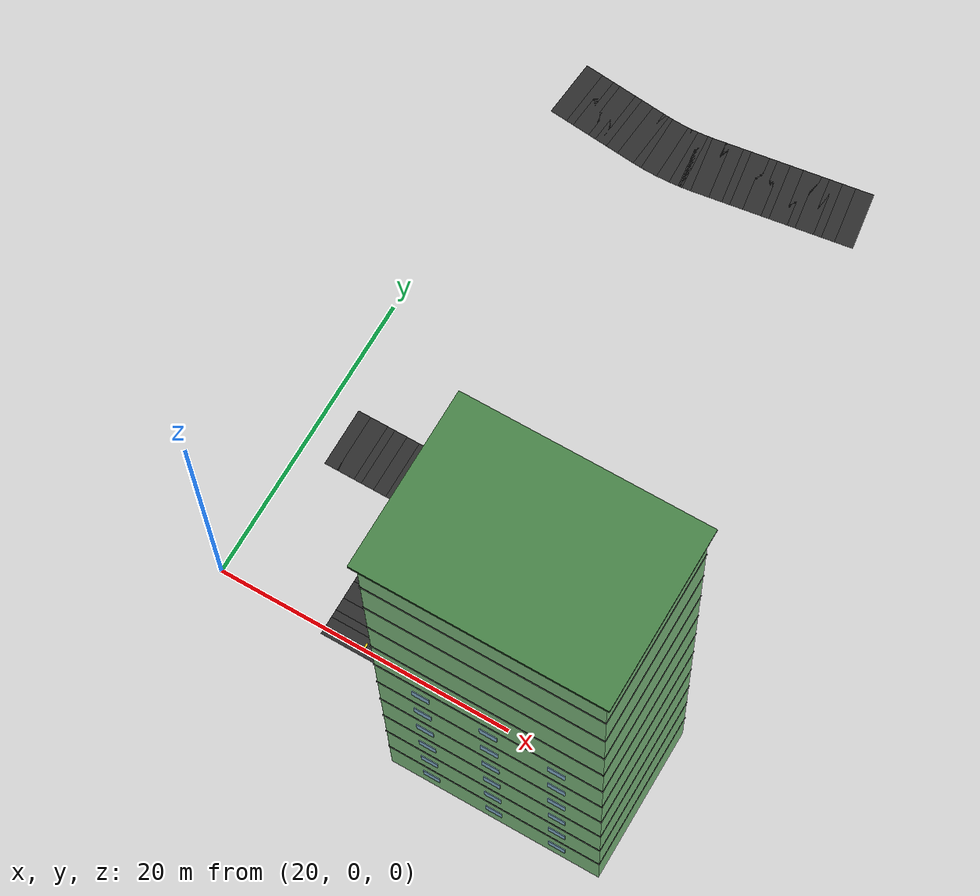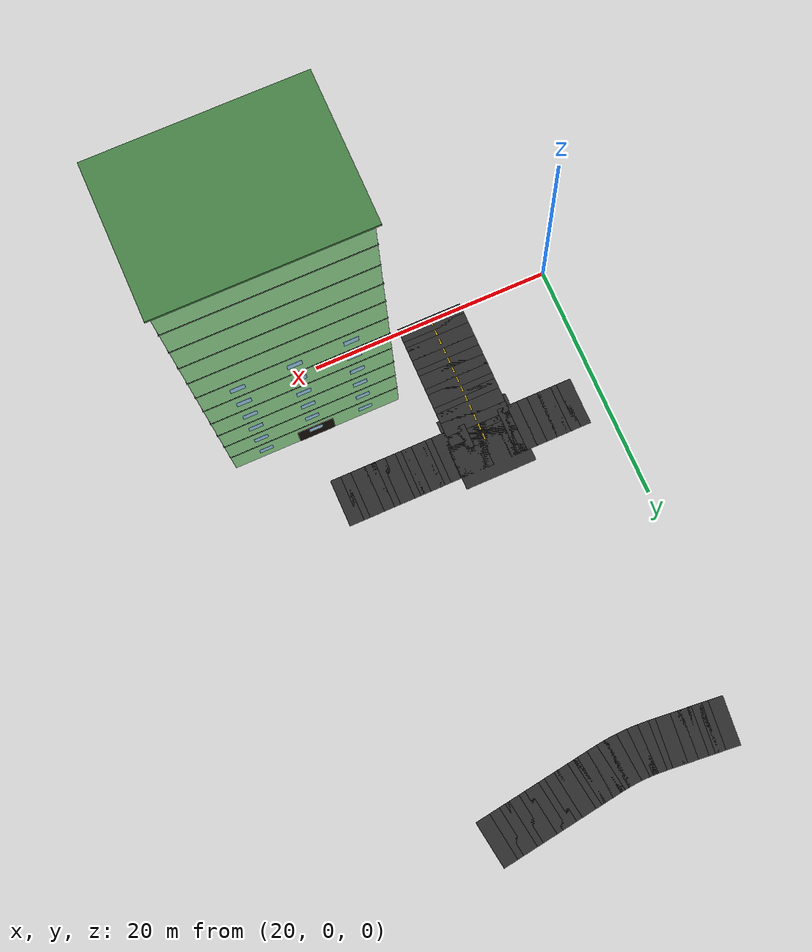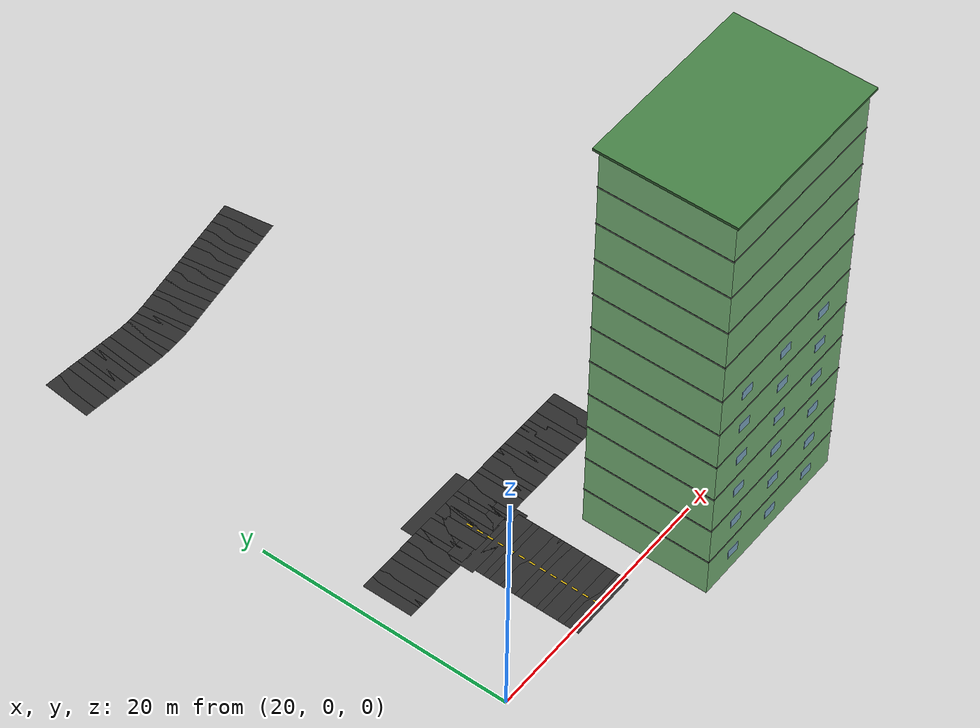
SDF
<sdf version="1.7">
 <world name="campus_delivery">
  <model name="campus_roads">
   <static>true</static>
   <link name="campus_main_trunk_0049">
    <pose>30.000 0.205 0.002 0 0 1.570796</pose>
    <visual name="visual">
     <geometry><box><size>1.214 5.500 0.004</size></box></geometry>
     <material><ambient>0.160 0.160 0.160 1.000</ambient><diffuse>0.160 0.160 0.160 1.000</diffuse></material>
    </visual>
    <visual name="center_line">
     <pose>0 0 0.008 0 0 0</pose>
     <geometry><box><size>0.475 0.120 0.012</size></box></geometry>
     <material><ambient>0.950 0.780 0.080 1.000</ambient><diffuse>0.950 0.780 0.080 1.000</diffuse></material>
    </visual>
   </link>
   <link name="campus_main_trunk_0050">
    <pose>30.000 1.068 0.002 0 0 1.570796</pose>
    <visual name="visual">
     <geometry><box><size>1.214 5.500 0.004</size></box></geometry>
     <material><ambient>0.160 0.160 0.160 1.000</ambient><diffuse>0.160 0.160 0.160 1.000</diffuse></material>
    </visual>
    <visual name="center_line">
     <pose>0 0 0.008 0 0 0</pose>
     <geometry><box><size>0.475 0.120 0.012</size></box></geometry>
     <material><ambient>0.950 0.780 0.080 1.000</ambient><diffuse>0.950 0.780 0.080 1.000</diffuse></material>
    </visual>
   </link>
   <link name="campus_main_trunk_0051">
    <pose>30.000 1.932 0.002 0 0 1.570796</pose>
    <visual name="visual">
     <geometry><box><size>1.214 5.500 0.004</size></box></geometry>
     <material><ambient>0.160 0.160 0.160 1.000</ambient><diffuse>0.160 0.160 0.160 1.000</diffuse></material>
    </visual>
    <visual name="center_line">
     <pose>0 0 0.008 0 0 0</pose>
     <geometry><box><size>0.475 0.120 0.012</size></box></geometry>
     <material><ambient>0.950 0.780 0.080 1.000</ambient><diffuse>0.950 0.780 0.080 1.000</diffuse></material>
    </visual>
   </link>
   <link name="campus_main_trunk_0052">
    <pose>30.000 2.795 0.002 0 0 1.570796</pose>
    <visual name="visual">
     <geometry><box><size>1.214 5.500 0.004</size></box></geometry>
     <material><ambient>0.160 0.160 0.160 1.000</ambient><diffuse>0.160 0.160 0.160 1.000</diffuse></material>
    </visual>
    <visual name="center_line">
     <pose>0 0 0.008 0 0 0</pose>
     <geometry><box><size>0.475 0.120 0.012</size></box></geometry>
     <material><ambient>0.950 0.780 0.080 1.000</ambient><diffuse>0.950 0.780 0.080 1.000</diffuse></material>
    </visual>
   </link>
   <link name="campus_main_trunk_0053">
    <pose>30.000 3.659 0.002 0 0 1.570796</pose>
    <visual name="visual">
     <geometry><box><size>1.214 5.500 0.004</size></box></geometry>
     <material><ambient>0.160 0.160 0.160 1.000</ambient><diffuse>0.160 0.160 0.160 1.000</diffuse></material>
    </visual>
    <visual name="center_line">
     <pose>0 0 0.008 0 0 0</pose>
     <geometry><box><size>0.475 0.120 0.012</size></box></geometry>
     <material><ambient>0.950 0.780 0.080 1.000</ambient><diffuse>0.950 0.780 0.080 1.000</diffuse></material>
    </visual>
   </link>
   <link name="campus_main_trunk_0054">
    <pose>30.000 4.523 0.002 0 0 1.570796</pose>
    <visual name="visual">
     <geometry><box><size>1.214 5.500 0.004</size></box></geometry>
     <material><ambient>0.160 0.160 0.160 1.000</ambient><diffuse>0.160 0.160 0.160 1.000</diffuse></material>
    </visual>
    <visual name="center_line">
     <pose>0 0 0.008 0 0 0</pose>
     <geometry><box><size>0.475 0.120 0.012</size></box></geometry>
     <material><ambient>0.950 0.780 0.080 1.000</ambient><diffuse>0.950 0.780 0.080 1.000</diffuse></material>
    </visual>
   </link>
   <link name="campus_main_trunk_0055">
    <pose>30.000 5.386 0.002 0 0 1.570796</pose>
    <visual name="visual">
     <geometry><box><size>1.214 5.500 0.004</size></box></geometry>
     <material><ambient>0.160 0.160 0.160 1.000</ambient><diffuse>0.160 0.160 0.160 1.000</diffuse></material>
    </visual>
    <visual name="center_line">
     <pose>0 0 0.008 0 0 0</pose>
     <geometry><box><size>0.475 0.120 0.012</size></box></geometry>
     <material><ambient>0.950 0.780 0.080 1.000</ambient><diffuse>0.950 0.780 0.080 1.000</diffuse></material>
    </visual>
   </link>
   <link name="campus_main_trunk_0056">
    <pose>30.000 6.250 0.002 0 0 1.570796</pose>
    <visual name="visual">
     <geometry><box><size>1.214 5.500 0.004</size></box></geometry>
     <material><ambient>0.160 0.160 0.160 1.000</ambient><diffuse>0.160 0.160 0.160 1.000</diffuse></material>
    </visual>
    <visual name="center_line">
     <pose>0 0 0.008 0 0 0</pose>
     <geometry><box><size>0.475 0.120 0.012</size></box></geometry>
     <material><ambient>0.950 0.780 0.080 1.000</ambient><diffuse>0.950 0.780 0.080 1.000</diffuse></material>
    </visual>
   </link>
   <link name="campus_main_trunk_0057">
    <pose>30.000 7.114 0.002 0 0 1.570796</pose>
    <visual name="visual">
     <geometry><box><size>1.214 5.500 0.004</size></box></geometry>
     <material><ambient>0.160 0.160 0.160 1.000</ambient><diffuse>0.160 0.160 0.160 1.000</diffuse></material>
    </visual>
    <visual name="center_line">
     <pose>0 0 0.008 0 0 0</pose>
     <geometry><box><size>0.475 0.120 0.012</size></box></geometry>
     <material><ambient>0.950 0.780 0.080 1.000</ambient><diffuse>0.950 0.780 0.080 1.000</diffuse></material>
    </visual>
   </link>
   <link name="campus_main_trunk_0058">
    <pose>30.000 7.977 0.002 0 0 1.570796</pose>
    <visual name="visual">
     <geometry><box><size>1.214 5.500 0.004</size></box></geometry>
     <material><ambient>0.160 0.160 0.160 1.000</ambient><diffuse>0.160 0.160 0.160 1.000</diffuse></material>
    </visual>
    <visual name="center_line">
     <pose>0 0 0.008 0 0 0</pose>
     <geometry><box><size>0.475 0.120 0.012</size></box></geometry>
     <material><ambient>0.950 0.780 0.080 1.000</ambient><diffuse>0.950 0.780 0.080 1.000</diffuse></material>
    </visual>
   </link>
   <link name="campus_main_trunk_0059">
    <pose>30.000 8.841 0.002 0 0 1.570796</pose>
    <visual name="visual">
     <geometry><box><size>1.214 5.500 0.004</size></box></geometry>
     <material><ambient>0.160 0.160 0.160 1.000</ambient><diffuse>0.160 0.160 0.160 1.000</diffuse></material>
    </visual>
    <visual name="center_line">
     <pose>0 0 0.008 0 0 0</pose>
     <geometry><box><size>0.475 0.120 0.012</size></box></geometry>
     <material><ambient>0.950 0.780 0.080 1.000</ambient><diffuse>0.950 0.780 0.080 1.000</diffuse></material>
    </visual>
   </link>
   <link name="campus_main_trunk_0060">
    <pose>30.000 9.705 0.002 0 0 1.570796</pose>
    <visual name="visual">
     <geometry><box><size>1.214 5.500 0.004</size></box></geometry>
     <material><ambient>0.160 0.160 0.160 1.000</ambient><diffuse>0.160 0.160 0.160 1.000</diffuse></material>
    </visual>
    <visual name="center_line">
     <pose>0 0 0.008 0 0 0</pose>
     <geometry><box><size>0.475 0.120 0.012</size></box></geometry>
     <material><ambient>0.950 0.780 0.080 1.000</ambient><diffuse>0.950 0.780 0.080 1.000</diffuse></material>
    </visual>
   </link>
   <link name="campus_main_trunk_0061">
    <pose>30.000 10.568 0.002 0 0 1.570796</pose>
    <visual name="visual">
     <geometry><box><size>1.214 5.500 0.004</size></box></geometry>
     <material><ambient>0.160 0.160 0.160 1.000</ambient><diffuse>0.160 0.160 0.160 1.000</diffuse></material>
    </visual>
    <visual name="center_line">
     <pose>0 0 0.008 0 0 0</pose>
     <geometry><box><size>0.475 0.120 0.012</size></box></geometry>
     <material><ambient>0.950 0.780 0.080 1.000</ambient><diffuse>0.950 0.780 0.080 1.000</diffuse></material>
    </visual>
   </link>
   <link name="north_campus_loop_0000">
    <pose>32.435 11.000 0.002 0 0 0.000000</pose>
    <visual name="visual">
     <geometry><box><size>1.220 4.000 0.004</size></box></geometry>
     <material><ambient>0.160 0.160 0.160 1.000</ambient><diffuse>0.160 0.160 0.160 1.000</diffuse></material>
    </visual>
   </link>
   <link name="north_campus_loop_0001">
    <pose>33.304 11.000 0.002 0 0 0.000000</pose>
    <visual name="visual">
     <geometry><box><size>1.220 4.000 0.004</size></box></geometry>
     <material><ambient>0.160 0.160 0.160 1.000</ambient><diffuse>0.160 0.160 0.160 1.000</diffuse></material>
    </visual>
   </link>
   <link name="north_campus_loop_0002">
    <pose>34.174 11.000 0.002 0 0 0.000000</pose>
    <visual name="visual">
     <geometry><box><size>1.220 4.000 0.004</size></box></geometry>
     <material><ambient>0.160 0.160 0.160 1.000</ambient><diffuse>0.160 0.160 0.160 1.000</diffuse></material>
    </visual>
   </link>
   <link name="north_campus_loop_0003">
    <pose>35.043 11.000 0.002 0 0 0.000000</pose>
    <visual name="visual">
     <geometry><box><size>1.220 4.000 0.004</size></box></geometry>
     <material><ambient>0.160 0.160 0.160 1.000</ambient><diffuse>0.160 0.160 0.160 1.000</diffuse></material>
    </visual>
   </link>
   <link name="north_campus_loop_0004">
    <pose>35.913 11.000 0.002 0 0 0.000000</pose>
    <visual name="visual">
     <geometry><box><size>1.220 4.000 0.004</size></box></geometry>
     <material><ambient>0.160 0.160 0.160 1.000</ambient><diffuse>0.160 0.160 0.160 1.000</diffuse></material>
    </visual>
   </link>
   <link name="north_campus_loop_0005">
    <pose>36.783 11.000 0.002 0 0 0.000000</pose>
    <visual name="visual">
     <geometry><box><size>1.220 4.000 0.004</size></box></geometry>
     <material><ambient>0.160 0.160 0.160 1.000</ambient><diffuse>0.160 0.160 0.160 1.000</diffuse></material>
    </visual>
   </link>
   <link name="north_campus_loop_0006">
    <pose>37.652 11.000 0.002 0 0 0.000000</pose>
    <visual name="visual">
     <geometry><box><size>1.220 4.000 0.004</size></box></geometry>
     <material><ambient>0.160 0.160 0.160 1.000</ambient><diffuse>0.160 0.160 0.160 1.000</diffuse></material>
    </visual>
   </link>
   <link name="north_campus_loop_0007">
    <pose>38.522 11.000 0.002 0 0 0.000000</pose>
    <visual name="visual">
     <geometry><box><size>1.220 4.000 0.004</size></box></geometry>
     <material><ambient>0.160 0.160 0.160 1.000</ambient><diffuse>0.160 0.160 0.160 1.000</diffuse></material>
    </visual>
   </link>
   <link name="north_campus_loop_0008">
    <pose>39.391 11.000 0.002 0 0 0.000000</pose>
    <visual name="visual">
     <geometry><box><size>1.220 4.000 0.004</size></box></geometry>
     <material><ambient>0.160 0.160 0.160 1.000</ambient><diffuse>0.160 0.160 0.160 1.000</diffuse></material>
    </visual>
   </link>
   <link name="north_campus_loop_0009">
    <pose>40.261 11.000 0.002 0 0 0.000000</pose>
    <visual name="visual">
     <geometry><box><size>1.220 4.000 0.004</size></box></geometry>
     <material><ambient>0.160 0.160 0.160 1.000</ambient><diffuse>0.160 0.160 0.160 1.000</diffuse></material>
    </visual>
   </link>
   <link name="north_campus_loop_0010">
    <pose>41.130 11.000 0.002 0 0 0.000000</pose>
    <visual name="visual">
     <geometry><box><size>1.220 4.000 0.004</size></box></geometry>
     <material><ambient>0.160 0.160 0.160 1.000</ambient><diffuse>0.160 0.160 0.160 1.000</diffuse></material>
    </visual>
   </link>
   <link name="north_campus_loop_0011">
    <pose>42.000 11.000 0.002 0 0 0.000000</pose>
    <visual name="visual">
     <geometry><box><size>1.220 4.000 0.004</size></box></geometry>
     <material><ambient>0.160 0.160 0.160 1.000</ambient><diffuse>0.160 0.160 0.160 1.000</diffuse></material>
    </visual>
   </link>
   <link name="north_campus_loop_0126">
    <pose>41.978 39.761 0.002 0 0 -2.995580</pose>
    <visual name="visual">
     <geometry><box><size>1.229 4.000 0.004</size></box></geometry>
     <material><ambient>0.160 0.160 0.160 1.000</ambient><diffuse>0.160 0.160 0.160 1.000</diffuse></material>
    </visual>
   </link>
   <link name="north_campus_loop_0127">
    <pose>41.109 39.634 0.002 0 0 -2.995580</pose>
    <visual name="visual">
     <geometry><box><size>1.229 4.000 0.004</size></box></geometry>
     <material><ambient>0.160 0.160 0.160 1.000</ambient><diffuse>0.160 0.160 0.160 1.000</diffuse></material>
    </visual>
   </link>
   <link name="north_campus_loop_0128">
    <pose>40.239 39.506 0.002 0 0 -2.995580</pose>
    <visual name="visual">
     <geometry><box><size>1.229 4.000 0.004</size></box></geometry>
     <material><ambient>0.160 0.160 0.160 1.000</ambient><diffuse>0.160 0.160 0.160 1.000</diffuse></material>
    </visual>
   </link>
   <link name="north_campus_loop_0129">
    <pose>39.370 39.378 0.002 0 0 -2.995580</pose>
    <visual name="visual">
     <geometry><box><size>1.229 4.000 0.004</size></box></geometry>
     <material><ambient>0.160 0.160 0.160 1.000</ambient><diffuse>0.160 0.160 0.160 1.000</diffuse></material>
    </visual>
   </link>
   <link name="north_campus_loop_0130">
    <pose>38.500 39.250 0.002 0 0 -2.995580</pose>
    <visual name="visual">
     <geometry><box><size>1.229 4.000 0.004</size></box></geometry>
     <material><ambient>0.160 0.160 0.160 1.000</ambient><diffuse>0.160 0.160 0.160 1.000</diffuse></material>
    </visual>
   </link>
   <link name="north_campus_loop_0131">
    <pose>37.630 39.122 0.002 0 0 -2.995580</pose>
    <visual name="visual">
     <geometry><box><size>1.229 4.000 0.004</size></box></geometry>
     <material><ambient>0.160 0.160 0.160 1.000</ambient><diffuse>0.160 0.160 0.160 1.000</diffuse></material>
    </visual>
   </link>
   <link name="north_campus_loop_0132">
    <pose>36.761 38.994 0.002 0 0 -2.995580</pose>
    <visual name="visual">
     <geometry><box><size>1.229 4.000 0.004</size></box></geometry>
     <material><ambient>0.160 0.160 0.160 1.000</ambient><diffuse>0.160 0.160 0.160 1.000</diffuse></material>
    </visual>
   </link>
   <link name="north_campus_loop_0133">
    <pose>35.891 38.866 0.002 0 0 -2.995580</pose>
    <visual name="visual">
     <geometry><box><size>1.229 4.000 0.004</size></box></geometry>
     <material><ambient>0.160 0.160 0.160 1.000</ambient><diffuse>0.160 0.160 0.160 1.000</diffuse></material>
    </visual>
   </link>
   <link name="north_campus_loop_0134">
    <pose>35.022 38.739 0.002 0 0 -2.995580</pose>
    <visual name="visual">
     <geometry><box><size>1.229 4.000 0.004</size></box></geometry>
     <material><ambient>0.160 0.160 0.160 1.000</ambient><diffuse>0.160 0.160 0.160 1.000</diffuse></material>
    </visual>
   </link>
   <link name="north_campus_loop_0135">
    <pose>34.152 38.611 0.002 0 0 -2.995580</pose>
    <visual name="visual">
     <geometry><box><size>1.229 4.000 0.004</size></box></geometry>
     <material><ambient>0.160 0.160 0.160 1.000</ambient><diffuse>0.160 0.160 0.160 1.000</diffuse></material>
    </visual>
   </link>
   <link name="north_campus_loop_0136">
    <pose>33.283 38.483 0.002 0 0 -2.995580</pose>
    <visual name="visual">
     <geometry><box><size>1.229 4.000 0.004</size></box></geometry>
     <material><ambient>0.160 0.160 0.160 1.000</ambient><diffuse>0.160 0.160 0.160 1.000</diffuse></material>
    </visual>
   </link>
   <link name="north_campus_loop_0137">
    <pose>32.413 38.355 0.002 0 0 -2.995580</pose>
    <visual name="visual">
     <geometry><box><size>1.229 4.000 0.004</size></box></geometry>
     <material><ambient>0.160 0.160 0.160 1.000</ambient><diffuse>0.160 0.160 0.160 1.000</diffuse></material>
    </visual>
   </link>
   <link name="north_campus_loop_0138">
    <pose>31.583 38.242 0.002 0 0 -3.019364</pose>
    <visual name="visual">
     <geometry><box><size>1.148 4.000 0.004</size></box></geometry>
     <material><ambient>0.160 0.160 0.160 1.000</ambient><diffuse>0.160 0.160 0.160 1.000</diffuse></material>
    </visual>
   </link>
   <link name="north_campus_loop_0139">
    <pose>30.790 38.164 0.002 0 0 -3.067234</pose>
    <visual name="visual">
     <geometry><box><size>1.145 4.000 0.004</size></box></geometry>
     <material><ambient>0.160 0.160 0.160 1.000</ambient><diffuse>0.160 0.160 0.160 1.000</diffuse></material>
    </visual>
   </link>
   <link name="north_campus_loop_0140">
    <pose>29.997 38.124 0.002 0 0 -3.115325</pose>
    <visual name="visual">
     <geometry><box><size>1.144 4.000 0.004</size></box></geometry>
     <material><ambient>0.160 0.160 0.160 1.000</ambient><diffuse>0.160 0.160 0.160 1.000</diffuse></material>
    </visual>
   </link>
   <link name="north_campus_loop_0141">
    <pose>29.202 38.122 0.002 0 0 3.119769</pose>
    <visual name="visual">
     <geometry><box><size>1.145 4.000 0.004</size></box></geometry>
     <material><ambient>0.160 0.160 0.160 1.000</ambient><diffuse>0.160 0.160 0.160 1.000</diffuse></material>
    </visual>
   </link>
   <link name="north_campus_loop_0142">
    <pose>28.407 38.159 0.002 0 0 3.071900</pose>
    <visual name="visual">
     <geometry><box><size>1.148 4.000 0.004</size></box></geometry>
     <material><ambient>0.160 0.160 0.160 1.000</ambient><diffuse>0.160 0.160 0.160 1.000</diffuse></material>
    </visual>
   </link>
   <link name="north_campus_loop_0143">
    <pose>27.580 38.227 0.002 0 0 3.048116</pose>
    <visual name="visual">
     <geometry><box><size>1.212 4.000 0.004</size></box></geometry>
     <material><ambient>0.160 0.160 0.160 1.000</ambient><diffuse>0.160 0.160 0.160 1.000</diffuse></material>
    </visual>
   </link>
   <link name="north_campus_loop_0144">
    <pose>26.721 38.307 0.002 0 0 3.048116</pose>
    <visual name="visual">
     <geometry><box><size>1.212 4.000 0.004</size></box></geometry>
     <material><ambient>0.160 0.160 0.160 1.000</ambient><diffuse>0.160 0.160 0.160 1.000</diffuse></material>
    </visual>
   </link>
   <link name="north_campus_loop_0145">
    <pose>25.863 38.388 0.002 0 0 3.048116</pose>
    <visual name="visual">
     <geometry><box><size>1.212 4.000 0.004</size></box></geometry>
     <material><ambient>0.160 0.160 0.160 1.000</ambient><diffuse>0.160 0.160 0.160 1.000</diffuse></material>
    </visual>
   </link>
   <link name="north_campus_loop_0146">
    <pose>25.004 38.468 0.002 0 0 3.048116</pose>
    <visual name="visual">
     <geometry><box><size>1.212 4.000 0.004</size></box></geometry>
     <material><ambient>0.160 0.160 0.160 1.000</ambient><diffuse>0.160 0.160 0.160 1.000</diffuse></material>
    </visual>
   </link>
   <link name="north_campus_loop_0147">
    <pose>24.146 38.549 0.002 0 0 3.048116</pose>
    <visual name="visual">
     <geometry><box><size>1.212 4.000 0.004</size></box></geometry>
     <material><ambient>0.160 0.160 0.160 1.000</ambient><diffuse>0.160 0.160 0.160 1.000</diffuse></material>
    </visual>
   </link>
   <link name="north_campus_loop_0148">
    <pose>23.288 38.629 0.002 0 0 3.048116</pose>
    <visual name="visual">
     <geometry><box><size>1.212 4.000 0.004</size></box></geometry>
     <material><ambient>0.160 0.160 0.160 1.000</ambient><diffuse>0.160 0.160 0.160 1.000</diffuse></material>
    </visual>
   </link>
   <link name="north_campus_loop_0149">
    <pose>22.429 38.710 0.002 0 0 3.048116</pose>
    <visual name="visual">
     <geometry><box><size>1.212 4.000 0.004</size></box></geometry>
     <material><ambient>0.160 0.160 0.160 1.000</ambient><diffuse>0.160 0.160 0.160 1.000</diffuse></material>
    </visual>
   </link>
   <link name="north_campus_loop_0377">
    <pose>22.348 11.000 0.002 0 0 0.000000</pose>
    <visual name="visual">
     <geometry><box><size>1.220 4.000 0.004</size></box></geometry>
     <material><ambient>0.160 0.160 0.160 1.000</ambient><diffuse>0.160 0.160 0.160 1.000</diffuse></material>
    </visual>
   </link>
   <link name="north_campus_loop_0378">
    <pose>23.217 11.000 0.002 0 0 0.000000</pose>
    <visual name="visual">
     <geometry><box><size>1.220 4.000 0.004</size></box></geometry>
     <material><ambient>0.160 0.160 0.160 1.000</ambient><diffuse>0.160 0.160 0.160 1.000</diffuse></material>
    </visual>
   </link>
   <link name="north_campus_loop_0379">
    <pose>24.087 11.000 0.002 0 0 0.000000</pose>
    <visual name="visual">
     <geometry><box><size>1.220 4.000 0.004</size></box></geometry>
     <material><ambient>0.160 0.160 0.160 1.000</ambient><diffuse>0.160 0.160 0.160 1.000</diffuse></material>
    </visual>
   </link>
   <link name="north_campus_loop_0380">
    <pose>24.957 11.000 0.002 0 0 0.000000</pose>
    <visual name="visual">
     <geometry><box><size>1.220 4.000 0.004</size></box></geometry>
     <material><ambient>0.160 0.160 0.160 1.000</ambient><diffuse>0.160 0.160 0.160 1.000</diffuse></material>
    </visual>
   </link>
   <link name="north_campus_loop_0381">
    <pose>25.826 11.000 0.002 0 0 0.000000</pose>
    <visual name="visual">
     <geometry><box><size>1.220 4.000 0.004</size></box></geometry>
     <material><ambient>0.160 0.160 0.160 1.000</ambient><diffuse>0.160 0.160 0.160 1.000</diffuse></material>
    </visual>
   </link>
   <link name="north_campus_loop_0382">
    <pose>26.696 11.000 0.002 0 0 0.000000</pose>
    <visual name="visual">
     <geometry><box><size>1.220 4.000 0.004</size></box></geometry>
     <material><ambient>0.160 0.160 0.160 1.000</ambient><diffuse>0.160 0.160 0.160 1.000</diffuse></material>
    </visual>
   </link>
   <link name="north_campus_loop_0383">
    <pose>27.565 11.000 0.002 0 0 0.000000</pose>
    <visual name="visual">
     <geometry><box><size>1.220 4.000 0.004</size></box></geometry>
     <material><ambient>0.160 0.160 0.160 1.000</ambient><diffuse>0.160 0.160 0.160 1.000</diffuse></material>
    </visual>
   </link>
   <link name="north_campus_loop_0384">
    <pose>28.400 11.000 0.002 0 0 0.000000</pose>
    <visual name="visual">
     <geometry><box><size>1.150 4.000 0.004</size></box></geometry>
     <material><ambient>0.160 0.160 0.160 1.000</ambient><diffuse>0.160 0.160 0.160 1.000</diffuse></material>
    </visual>
   </link>
   <link name="north_campus_loop_0385">
    <pose>29.200 11.000 0.002 0 0 -0.000000</pose>
    <visual name="visual">
     <geometry><box><size>1.150 4.000 0.004</size></box></geometry>
     <material><ambient>0.160 0.160 0.160 1.000</ambient><diffuse>0.160 0.160 0.160 1.000</diffuse></material>
    </visual>
   </link>
   <link name="north_campus_loop_0386">
    <pose>30.000 11.000 0.002 0 0 0.000000</pose>
    <visual name="visual">
     <geometry><box><size>1.150 4.000 0.004</size></box></geometry>
     <material><ambient>0.160 0.160 0.160 1.000</ambient><diffuse>0.160 0.160 0.160 1.000</diffuse></material>
    </visual>
   </link>
   <link name="north_campus_loop_0387">
    <pose>30.800 11.000 0.002 0 0 0.000000</pose>
    <visual name="visual">
     <geometry><box><size>1.150 4.000 0.004</size></box></geometry>
     <material><ambient>0.160 0.160 0.160 1.000</ambient><diffuse>0.160 0.160 0.160 1.000</diffuse></material>
    </visual>
   </link>
   <link name="north_campus_loop_0388">
    <pose>31.600 11.000 0.002 0 0 0.000000</pose>
    <visual name="visual">
     <geometry><box><size>1.150 4.000 0.004</size></box></geometry>
     <material><ambient>0.160 0.160 0.160 1.000</ambient><diffuse>0.160 0.160 0.160 1.000</diffuse></material>
    </visual>
   </link>
   <link name="dormitory_service_junction">
    <pose>30.000 11.000 0.002 0 0 0</pose>
    <visual name="visual">
     <geometry><box><size>6.000 6.000 0.004</size></box></geometry>
     <material><ambient>0.160 0.160 0.160 1.000</ambient><diffuse>0.160 0.160 0.160 1.000</diffuse></material>
    </visual>
   </link>
  </model>
  <model name="dormitory_2">
   <static>true</static>
   <pose>42.000 0.000 0 0 0 0</pose>
   <link name="body">
    <visual name="body">
     <pose>0 0 17.600 0 0 0</pose>
     <geometry><box><size>14.000 10.000 35.200</size></box></geometry>
     <material><ambient>0.580 0.860 0.580 1.000</ambient><diffuse>0.580 0.860 0.580 1.000</diffuse></material>
    </visual>
    <collision name="body_collision">
     <pose>0 0 17.600 0 0 0</pose>
     <geometry><box><size>14.000 10.000 35.200</size></box></geometry>
    </collision>
    <visual name="roof">
     <pose>0 0 35.300 0 0 0</pose>
     <geometry><box><size>14.600 10.600 0.200</size></box></geometry>
     <material><ambient>0.260 0.480 0.260 1.000</ambient><diffuse>0.260 0.480 0.260 1.000</diffuse></material>
    </visual>
    <visual name="floor_sep_n_1">
     <pose>0 5.018 3.200 0 0 0</pose>
     <geometry><box><size>14.100 0.035 0.060</size></box></geometry>
     <material><ambient>0.080 0.080 0.080 1.000</ambient><diffuse>0.080 0.080 0.080 1.000</diffuse></material>
    </visual>
    <visual name="floor_sep_s_1">
     <pose>0 -5.018 3.200 0 0 0</pose>
     <geometry><box><size>14.100 0.035 0.060</size></box></geometry>
     <material><ambient>0.080 0.080 0.080 1.000</ambient><diffuse>0.080 0.080 0.080 1.000</diffuse></material>
    </visual>
    <visual name="floor_sep_e_1">
     <pose>7.018 0 3.200 0 0 0</pose>
     <geometry><box><size>0.035 10.100 0.060</size></box></geometry>
     <material><ambient>0.080 0.080 0.080 1.000</ambient><diffuse>0.080 0.080 0.080 1.000</diffuse></material>
    </visual>
    <visual name="floor_sep_w_1">
     <pose>-7.018 0 3.200 0 0 0</pose>
     <geometry><box><size>0.035 10.100 0.060</size></box></geometry>
     <material><ambient>0.080 0.080 0.080 1.000</ambient><diffuse>0.080 0.080 0.080 1.000</diffuse></material>
    </visual>
    <visual name="floor_sep_n_2">
     <pose>0 5.018 6.400 0 0 0</pose>
     <geometry><box><size>14.100 0.035 0.060</size></box></geometry>
     <material><ambient>0.080 0.080 0.080 1.000</ambient><diffuse>0.080 0.080 0.080 1.000</diffuse></material>
    </visual>
    <visual name="floor_sep_s_2">
     <pose>0 -5.018 6.400 0 0 0</pose>
     <geometry><box><size>14.100 0.035 0.060</size></box></geometry>
     <material><ambient>0.080 0.080 0.080 1.000</ambient><diffuse>0.080 0.080 0.080 1.000</diffuse></material>
    </visual>
    <visual name="floor_sep_e_2">
     <pose>7.018 0 6.400 0 0 0</pose>
     <geometry><box><size>0.035 10.100 0.060</size></box></geometry>
     <material><ambient>0.080 0.080 0.080 1.000</ambient><diffuse>0.080 0.080 0.080 1.000</diffuse></material>
    </visual>
    <visual name="floor_sep_w_2">
     <pose>-7.018 0 6.400 0 0 0</pose>
     <geometry><box><size>0.035 10.100 0.060</size></box></geometry>
     <material><ambient>0.080 0.080 0.080 1.000</ambient><diffuse>0.080 0.080 0.080 1.000</diffuse></material>
    </visual>
    <visual name="floor_sep_n_3">
     <pose>0 5.018 9.600 0 0 0</pose>
     <geometry><box><size>14.100 0.035 0.060</size></box></geometry>
     <material><ambient>0.080 0.080 0.080 1.000</ambient><diffuse>0.080 0.080 0.080 1.000</diffuse></material>
    </visual>
    <visual name="floor_sep_s_3">
     <pose>0 -5.018 9.600 0 0 0</pose>
     <geometry><box><size>14.100 0.035 0.060</size></box></geometry>
     <material><ambient>0.080 0.080 0.080 1.000</ambient><diffuse>0.080 0.080 0.080 1.000</diffuse></material>
    </visual>
    <visual name="floor_sep_e_3">
     <pose>7.018 0 9.600 0 0 0</pose>
     <geometry><box><size>0.035 10.100 0.060</size></box></geometry>
     <material><ambient>0.080 0.080 0.080 1.000</ambient><diffuse>0.080 0.080 0.080 1.000</diffuse></material>
    </visual>
    <visual name="floor_sep_w_3">
     <pose>-7.018 0 9.600 0 0 0</pose>
     <geometry><box><size>0.035 10.100 0.060</size></box></geometry>
     <material><ambient>0.080 0.080 0.080 1.000</ambient><diffuse>0.080 0.080 0.080 1.000</diffuse></material>
    </visual>
    <visual name="floor_sep_n_4">
     <pose>0 5.018 12.800 0 0 0</pose>
     <geometry><box><size>14.100 0.035 0.060</size></box></geometry>
     <material><ambient>0.080 0.080 0.080 1.000</ambient><diffuse>0.080 0.080 0.080 1.000</diffuse></material>
    </visual>
    <visual name="floor_sep_s_4">
     <pose>0 -5.018 12.800 0 0 0</pose>
     <geometry><box><size>14.100 0.035 0.060</size></box></geometry>
     <material><ambient>0.080 0.080 0.080 1.000</ambient><diffuse>0.080 0.080 0.080 1.000</diffuse></material>
    </visual>
    <visual name="floor_sep_e_4">
     <pose>7.018 0 12.800 0 0 0</pose>
     <geometry><box><size>0.035 10.100 0.060</size></box></geometry>
     <material><ambient>0.080 0.080 0.080 1.000</ambient><diffuse>0.080 0.080 0.080 1.000</diffuse></material>
    </visual>
    <visual name="floor_sep_w_4">
     <pose>-7.018 0 12.800 0 0 0</pose>
     <geometry><box><size>0.035 10.100 0.060</size></box></geometry>
     <material><ambient>0.080 0.080 0.080 1.000</ambient><diffuse>0.080 0.080 0.080 1.000</diffuse></material>
    </visual>
    <visual name="floor_sep_n_5">
     <pose>0 5.018 16.000 0 0 0</pose>
     <geometry><box><size>14.100 0.035 0.060</size></box></geometry>
     <material><ambient>0.080 0.080 0.080 1.000</ambient><diffuse>0.080 0.080 0.080 1.000</diffuse></material>
    </visual>
    <visual name="floor_sep_s_5">
     <pose>0 -5.018 16.000 0 0 0</pose>
     <geometry><box><size>14.100 0.035 0.060</size></box></geometry>
     <material><ambient>0.080 0.080 0.080 1.000</ambient><diffuse>0.080 0.080 0.080 1.000</diffuse></material>
    </visual>
    <visual name="floor_sep_e_5">
     <pose>7.018 0 16.000 0 0 0</pose>
     <geometry><box><size>0.035 10.100 0.060</size></box></geometry>
     <material><ambient>0.080 0.080 0.080 1.000</ambient><diffuse>0.080 0.080 0.080 1.000</diffuse></material>
    </visual>
    <visual name="floor_sep_w_5">
     <pose>-7.018 0 16.000 0 0 0</pose>
     <geometry><box><size>0.035 10.100 0.060</size></box></geometry>
     <material><ambient>0.080 0.080 0.080 1.000</ambient><diffuse>0.080 0.080 0.080 1.000</diffuse></material>
    </visual>
    <visual name="floor_sep_n_6">
     <pose>0 5.018 19.200 0 0 0</pose>
     <geometry><box><size>14.100 0.035 0.060</size></box></geometry>
     <material><ambient>0.080 0.080 0.080 1.000</ambient><diffuse>0.080 0.080 0.080 1.000</diffuse></material>
    </visual>
    <visual name="floor_sep_s_6">
     <pose>0 -5.018 19.200 0 0 0</pose>
     <geometry><box><size>14.100 0.035 0.060</size></box></geometry>
     <material><ambient>0.080 0.080 0.080 1.000</ambient><diffuse>0.080 0.080 0.080 1.000</diffuse></material>
    </visual>
    <visual name="floor_sep_e_6">
     <pose>7.018 0 19.200 0 0 0</pose>
     <geometry><box><size>0.035 10.100 0.060</size></box></geometry>
     <material><ambient>0.080 0.080 0.080 1.000</ambient><diffuse>0.080 0.080 0.080 1.000</diffuse></material>
    </visual>
    <visual name="floor_sep_w_6">
     <pose>-7.018 0 19.200 0 0 0</pose>
     <geometry><box><size>0.035 10.100 0.060</size></box></geometry>
     <material><ambient>0.080 0.080 0.080 1.000</ambient><diffuse>0.080 0.080 0.080 1.000</diffuse></material>
    </visual>
    <visual name="floor_sep_n_7">
     <pose>0 5.018 22.400 0 0 0</pose>
     <geometry><box><size>14.100 0.035 0.060</size></box></geometry>
     <material><ambient>0.080 0.080 0.080 1.000</ambient><diffuse>0.080 0.080 0.080 1.000</diffuse></material>
    </visual>
    <visual name="floor_sep_s_7">
     <pose>0 -5.018 22.400 0 0 0</pose>
     <geometry><box><size>14.100 0.035 0.060</size></box></geometry>
     <material><ambient>0.080 0.080 0.080 1.000</ambient><diffuse>0.080 0.080 0.080 1.000</diffuse></material>
    </visual>
    <visual name="floor_sep_e_7">
     <pose>7.018 0 22.400 0 0 0</pose>
     <geometry><box><size>0.035 10.100 0.060</size></box></geometry>
     <material><ambient>0.080 0.080 0.080 1.000</ambient><diffuse>0.080 0.080 0.080 1.000</diffuse></material>
    </visual>
    <visual name="floor_sep_w_7">
     <pose>-7.018 0 22.400 0 0 0</pose>
     <geometry><box><size>0.035 10.100 0.060</size></box></geometry>
     <material><ambient>0.080 0.080 0.080 1.000</ambient><diffuse>0.080 0.080 0.080 1.000</diffuse></material>
    </visual>
    <visual name="floor_sep_n_8">
     <pose>0 5.018 25.600 0 0 0</pose>
     <geometry><box><size>14.100 0.035 0.060</size></box></geometry>
     <material><ambient>0.080 0.080 0.080 1.000</ambient><diffuse>0.080 0.080 0.080 1.000</diffuse></material>
    </visual>
    <visual name="floor_sep_s_8">
     <pose>0 -5.018 25.600 0 0 0</pose>
     <geometry><box><size>14.100 0.035 0.060</size></box></geometry>
     <material><ambient>0.080 0.080 0.080 1.000</ambient><diffuse>0.080 0.080 0.080 1.000</diffuse></material>
    </visual>
    <visual name="floor_sep_e_8">
     <pose>7.018 0 25.600 0 0 0</pose>
     <geometry><box><size>0.035 10.100 0.060</size></box></geometry>
     <material><ambient>0.080 0.080 0.080 1.000</ambient><diffuse>0.080 0.080 0.080 1.000</diffuse></material>
    </visual>
    <visual name="floor_sep_w_8">
     <pose>-7.018 0 25.600 0 0 0</pose>
     <geometry><box><size>0.035 10.100 0.060</size></box></geometry>
     <material><ambient>0.080 0.080 0.080 1.000</ambient><diffuse>0.080 0.080 0.080 1.000</diffuse></material>
    </visual>
    <visual name="floor_sep_n_9">
     <pose>0 5.018 28.800 0 0 0</pose>
     <geometry><box><size>14.100 0.035 0.060</size></box></geometry>
     <material><ambient>0.080 0.080 0.080 1.000</ambient><diffuse>0.080 0.080 0.080 1.000</diffuse></material>
    </visual>
    <visual name="floor_sep_s_9">
     <pose>0 -5.018 28.800 0 0 0</pose>
     <geometry><box><size>14.100 0.035 0.060</size></box></geometry>
     <material><ambient>0.080 0.080 0.080 1.000</ambient><diffuse>0.080 0.080 0.080 1.000</diffuse></material>
    </visual>
    <visual name="floor_sep_e_9">
     <pose>7.018 0 28.800 0 0 0</pose>
     <geometry><box><size>0.035 10.100 0.060</size></box></geometry>
     <material><ambient>0.080 0.080 0.080 1.000</ambient><diffuse>0.080 0.080 0.080 1.000</diffuse></material>
    </visual>
    <visual name="floor_sep_w_9">
     <pose>-7.018 0 28.800 0 0 0</pose>
     <geometry><box><size>0.035 10.100 0.060</size></box></geometry>
     <material><ambient>0.080 0.080 0.080 1.000</ambient><diffuse>0.080 0.080 0.080 1.000</diffuse></material>
    </visual>
    <visual name="floor_sep_n_10">
     <pose>0 5.018 32.000 0 0 0</pose>
     <geometry><box><size>14.100 0.035 0.060</size></box></geometry>
     <material><ambient>0.080 0.080 0.080 1.000</ambient><diffuse>0.080 0.080 0.080 1.000</diffuse></material>
    </visual>
    <visual name="floor_sep_s_10">
     <pose>0 -5.018 32.000 0 0 0</pose>
     <geometry><box><size>14.100 0.035 0.060</size></box></geometry>
     <material><ambient>0.080 0.080 0.080 1.000</ambient><diffuse>0.080 0.080 0.080 1.000</diffuse></material>
    </visual>
    <visual name="floor_sep_e_10">
     <pose>7.018 0 32.000 0 0 0</pose>
     <geometry><box><size>0.035 10.100 0.060</size></box></geometry>
     <material><ambient>0.080 0.080 0.080 1.000</ambient><diffuse>0.080 0.080 0.080 1.000</diffuse></material>
    </visual>
    <visual name="floor_sep_w_10">
     <pose>-7.018 0 32.000 0 0 0</pose>
     <geometry><box><size>0.035 10.100 0.060</size></box></geometry>
     <material><ambient>0.080 0.080 0.080 1.000</ambient><diffuse>0.080 0.080 0.080 1.000</diffuse></material>
    </visual>
    <visual name="front_door">
     <pose>0 5.012 1.2 0 0 0</pose>
     <geometry><box><size>3.000 0.050 2.400</size></box></geometry>
     <material><ambient>0.080 0.060 0.040 1.000</ambient><diffuse>0.080 0.060 0.040 1.000</diffuse></material>
    </visual>
    <visual name="win_n_1_-4.2">
     <pose>-4.200 5.020 1.700 0 0 0</pose>
     <geometry><box><size>1.100 0.035 0.750</size></box></geometry>
     <material><ambient>0.620 0.820 0.950 1.000</ambient><diffuse>0.620 0.820 0.950 1.000</diffuse></material>
    </visual>
    <visual name="win_s_1_-4.2">
     <pose>-4.200 -5.020 1.700 0 0 0</pose>
     <geometry><box><size>1.100 0.035 0.750</size></box></geometry>
     <material><ambient>0.620 0.820 0.950 1.000</ambient><diffuse>0.620 0.820 0.950 1.000</diffuse></material>
    </visual>
    <visual name="win_n_1_0.0">
     <pose>0.000 5.020 1.700 0 0 0</pose>
     <geometry><box><size>1.100 0.035 0.750</size></box></geometry>
     <material><ambient>0.620 0.820 0.950 1.000</ambient><diffuse>0.620 0.820 0.950 1.000</diffuse></material>
    </visual>
    <visual name="win_s_1_0.0">
     <pose>0.000 -5.020 1.700 0 0 0</pose>
     <geometry><box><size>1.100 0.035 0.750</size></box></geometry>
     <material><ambient>0.620 0.820 0.950 1.000</ambient><diffuse>0.620 0.820 0.950 1.000</diffuse></material>
    </visual>
    <visual name="win_n_1_4.2">
     <pose>4.200 5.020 1.700 0 0 0</pose>
     <geometry><box><size>1.100 0.035 0.750</size></box></geometry>
     <material><ambient>0.620 0.820 0.950 1.000</ambient><diffuse>0.620 0.820 0.950 1.000</diffuse></material>
    </visual>
    <visual name="win_s_1_4.2">
     <pose>4.200 -5.020 1.700 0 0 0</pose>
     <geometry><box><size>1.100 0.035 0.750</size></box></geometry>
     <material><ambient>0.620 0.820 0.950 1.000</ambient><diffuse>0.620 0.820 0.950 1.000</diffuse></material>
    </visual>
    <visual name="win_n_2_-4.2">
     <pose>-4.200 5.020 4.900 0 0 0</pose>
     <geometry><box><size>1.100 0.035 0.750</size></box></geometry>
     <material><ambient>0.620 0.820 0.950 1.000</ambient><diffuse>0.620 0.820 0.950 1.000</diffuse></material>
    </visual>
    <visual name="win_s_2_-4.2">
     <pose>-4.200 -5.020 4.900 0 0 0</pose>
     <geometry><box><size>1.100 0.035 0.750</size></box></geometry>
     <material><ambient>0.620 0.820 0.950 1.000</ambient><diffuse>0.620 0.820 0.950 1.000</diffuse></material>
    </visual>
    <visual name="win_n_2_0.0">
     <pose>0.000 5.020 4.900 0 0 0</pose>
     <geometry><box><size>1.100 0.035 0.750</size></box></geometry>
     <material><ambient>0.620 0.820 0.950 1.000</ambient><diffuse>0.620 0.820 0.950 1.000</diffuse></material>
    </visual>
    <visual name="win_s_2_0.0">
     <pose>0.000 -5.020 4.900 0 0 0</pose>
     <geometry><box><size>1.100 0.035 0.750</size></box></geometry>
     <material><ambient>0.620 0.820 0.950 1.000</ambient><diffuse>0.620 0.820 0.950 1.000</diffuse></material>
    </visual>
    <visual name="win_n_2_4.2">
     <pose>4.200 5.020 4.900 0 0 0</pose>
     <geometry><box><size>1.100 0.035 0.750</size></box></geometry>
     <material><ambient>0.620 0.820 0.950 1.000</ambient><diffuse>0.620 0.820 0.950 1.000</diffuse></material>
    </visual>
    <visual name="win_s_2_4.2">
     <pose>4.200 -5.020 4.900 0 0 0</pose>
     <geometry><box><size>1.100 0.035 0.750</size></box></geometry>
     <material><ambient>0.620 0.820 0.950 1.000</ambient><diffuse>0.620 0.820 0.950 1.000</diffuse></material>
    </visual>
    <visual name="win_n_3_-4.2">
     <pose>-4.200 5.020 8.100 0 0 0</pose>
     <geometry><box><size>1.100 0.035 0.750</size></box></geometry>
     <material><ambient>0.620 0.820 0.950 1.000</ambient><diffuse>0.620 0.820 0.950 1.000</diffuse></material>
    </visual>
    <visual name="win_s_3_-4.2">
     <pose>-4.200 -5.020 8.100 0 0 0</pose>
     <geometry><box><size>1.100 0.035 0.750</size></box></geometry>
     <material><ambient>0.620 0.820 0.950 1.000</ambient><diffuse>0.620 0.820 0.950 1.000</diffuse></material>
    </visual>
    <visual name="win_n_3_0.0">
     <pose>0.000 5.020 8.100 0 0 0</pose>
     <geometry><box><size>1.100 0.035 0.750</size></box></geometry>
     <material><ambient>0.620 0.820 0.950 1.000</ambient><diffuse>0.620 0.820 0.950 1.000</diffuse></material>
    </visual>
    <visual name="win_s_3_0.0">
     <pose>0.000 -5.020 8.100 0 0 0</pose>
     <geometry><box><size>1.100 0.035 0.750</size></box></geometry>
     <material><ambient>0.620 0.820 0.950 1.000</ambient><diffuse>0.620 0.820 0.950 1.000</diffuse></material>
    </visual>
    <visual name="win_n_3_4.2">
     <pose>4.200 5.020 8.100 0 0 0</pose>
     <geometry><box><size>1.100 0.035 0.750</size></box></geometry>
     <material><ambient>0.620 0.820 0.950 1.000</ambient><diffuse>0.620 0.820 0.950 1.000</diffuse></material>
    </visual>
    <visual name="win_s_3_4.2">
     <pose>4.200 -5.020 8.100 0 0 0</pose>
     <geometry><box><size>1.100 0.035 0.750</size></box></geometry>
     <material><ambient>0.620 0.820 0.950 1.000</ambient><diffuse>0.620 0.820 0.950 1.000</diffuse></material>
    </visual>
    <visual name="win_n_4_-4.2">
     <pose>-4.200 5.020 11.300 0 0 0</pose>
     <geometry><box><size>1.100 0.035 0.750</size></box></geometry>
     <material><ambient>0.620 0.820 0.950 1.000</ambient><diffuse>0.620 0.820 0.950 1.000</diffuse></material>
    </visual>
    <visual name="win_s_4_-4.2">
     <pose>-4.200 -5.020 11.300 0 0 0</pose>
     <geometry><box><size>1.100 0.035 0.750</size></box></geometry>
     <material><ambient>0.620 0.820 0.950 1.000</ambient><diffuse>0.620 0.820 0.950 1.000</diffuse></material>
    </visual>
    <visual name="win_n_4_0.0">
     <pose>0.000 5.020 11.300 0 0 0</pose>
     <geometry><box><size>1.100 0.035 0.750</size></box></geometry>
     <material><ambient>0.620 0.820 0.950 1.000</ambient><diffuse>0.620 0.820 0.950 1.000</diffuse></material>
    </visual>
    <visual name="win_s_4_0.0">
     <pose>0.000 -5.020 11.300 0 0 0</pose>
     <geometry><box><size>1.100 0.035 0.750</size></box></geometry>
     <material><ambient>0.620 0.820 0.950 1.000</ambient><diffuse>0.620 0.820 0.950 1.000</diffuse></material>
    </visual>
    <visual name="win_n_4_4.2">
     <pose>4.200 5.020 11.300 0 0 0</pose>
     <geometry><box><size>1.100 0.035 0.750</size></box></geometry>
     <material><ambient>0.620 0.820 0.950 1.000</ambient><diffuse>0.620 0.820 0.950 1.000</diffuse></material>
    </visual>
    <visual name="win_s_4_4.2">
     <pose>4.200 -5.020 11.300 0 0 0</pose>
     <geometry><box><size>1.100 0.035 0.750</size></box></geometry>
     <material><ambient>0.620 0.820 0.950 1.000</ambient><diffuse>0.620 0.820 0.950 1.000</diffuse></material>
    </visual>
    <visual name="win_n_5_-4.2">
     <pose>-4.200 5.020 14.500 0 0 0</pose>
     <geometry><box><size>1.100 0.035 0.750</size></box></geometry>
     <material><ambient>0.620 0.820 0.950 1.000</ambient><diffuse>0.620 0.820 0.950 1.000</diffuse></material>
    </visual>
    <visual name="win_s_5_-4.2">
     <pose>-4.200 -5.020 14.500 0 0 0</pose>
     <geometry><box><size>1.100 0.035 0.750</size></box></geometry>
     <material><ambient>0.620 0.820 0.950 1.000</ambient><diffuse>0.620 0.820 0.950 1.000</diffuse></material>
    </visual>
    <visual name="win_n_5_0.0">
     <pose>0.000 5.020 14.500 0 0 0</pose>
     <geometry><box><size>1.100 0.035 0.750</size></box></geometry>
     <material><ambient>0.620 0.820 0.950 1.000</ambient><diffuse>0.620 0.820 0.950 1.000</diffuse></material>
    </visual>
    <visual name="win_s_5_0.0">
     <pose>0.000 -5.020 14.500 0 0 0</pose>
     <geometry><box><size>1.100 0.035 0.750</size></box></geometry>
     <material><ambient>0.620 0.820 0.950 1.000</ambient><diffuse>0.620 0.820 0.950 1.000</diffuse></material>
    </visual>
    <visual name="win_n_5_4.2">
     <pose>4.200 5.020 14.500 0 0 0</pose>
     <geometry><box><size>1.100 0.035 0.750</size></box></geometry>
     <material><ambient>0.620 0.820 0.950 1.000</ambient><diffuse>0.620 0.820 0.950 1.000</diffuse></material>
    </visual>
    <visual name="win_s_5_4.2">
     <pose>4.200 -5.020 14.500 0 0 0</pose>
     <geometry><box><size>1.100 0.035 0.750</size></box></geometry>
     <material><ambient>0.620 0.820 0.950 1.000</ambient><diffuse>0.620 0.820 0.950 1.000</diffuse></material>
    </visual>
    <visual name="win_n_6_-4.2">
     <pose>-4.200 5.020 17.700 0 0 0</pose>
     <geometry><box><size>1.100 0.035 0.750</size></box></geometry>
     <material><ambient>0.620 0.820 0.950 1.000</ambient><diffuse>0.620 0.820 0.950 1.000</diffuse></material>
    </visual>
    <visual name="win_s_6_-4.2">
     <pose>-4.200 -5.020 17.700 0 0 0</pose>
     <geometry><box><size>1.100 0.035 0.750</size></box></geometry>
     <material><ambient>0.620 0.820 0.950 1.000</ambient><diffuse>0.620 0.820 0.950 1.000</diffuse></material>
    </visual>
    <visual name="win_n_6_0.0">
     <pose>0.000 5.020 17.700 0 0 0</pose>
     <geometry><box><size>1.100 0.035 0.750</size></box></geometry>
     <material><ambient>0.620 0.820 0.950 1.000</ambient><diffuse>0.620 0.820 0.950 1.000</diffuse></material>
    </visual>
    <visual name="win_s_6_0.0">
     <pose>0.000 -5.020 17.700 0 0 0</pose>
     <geometry><box><size>1.100 0.035 0.750</size></box></geometry>
     <material><ambient>0.620 0.820 0.950 1.000</ambient><diffuse>0.620 0.820 0.950 1.000</diffuse></material>
    </visual>
    <visual name="win_n_6_4.2">
     <pose>4.200 5.020 17.700 0 0 0</pose>
     <geometry><box><size>1.100 0.035 0.750</size></box></geometry>
     <material><ambient>0.620 0.820 0.950 1.000</ambient><diffuse>0.620 0.820 0.950 1.000</diffuse></material>
    </visual>
    <visual name="win_s_6_4.2">
     <pose>4.200 -5.020 17.700 0 0 0</pose>
     <geometry><box><size>1.100 0.035 0.750</size></box></geometry>
     <material><ambient>0.620 0.820 0.950 1.000</ambient><diffuse>0.620 0.820 0.950 1.000</diffuse></material>
    </visual>
   </link>
  </model>
 </world>
</sdf>
